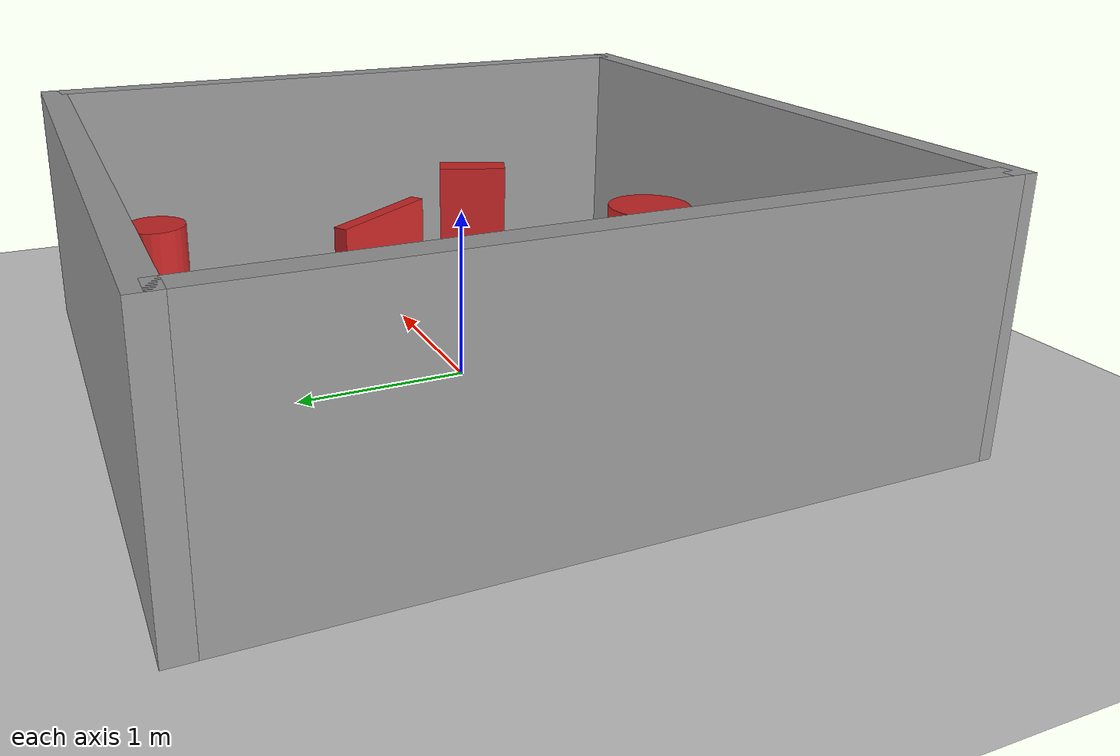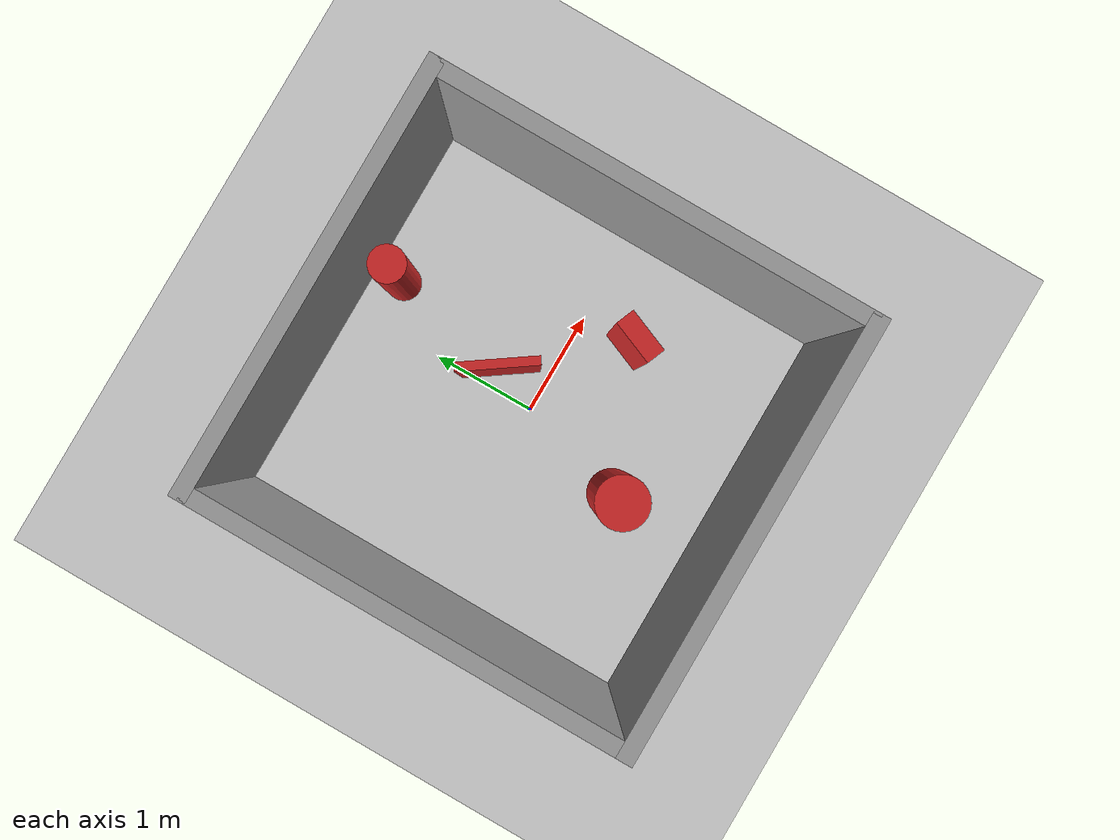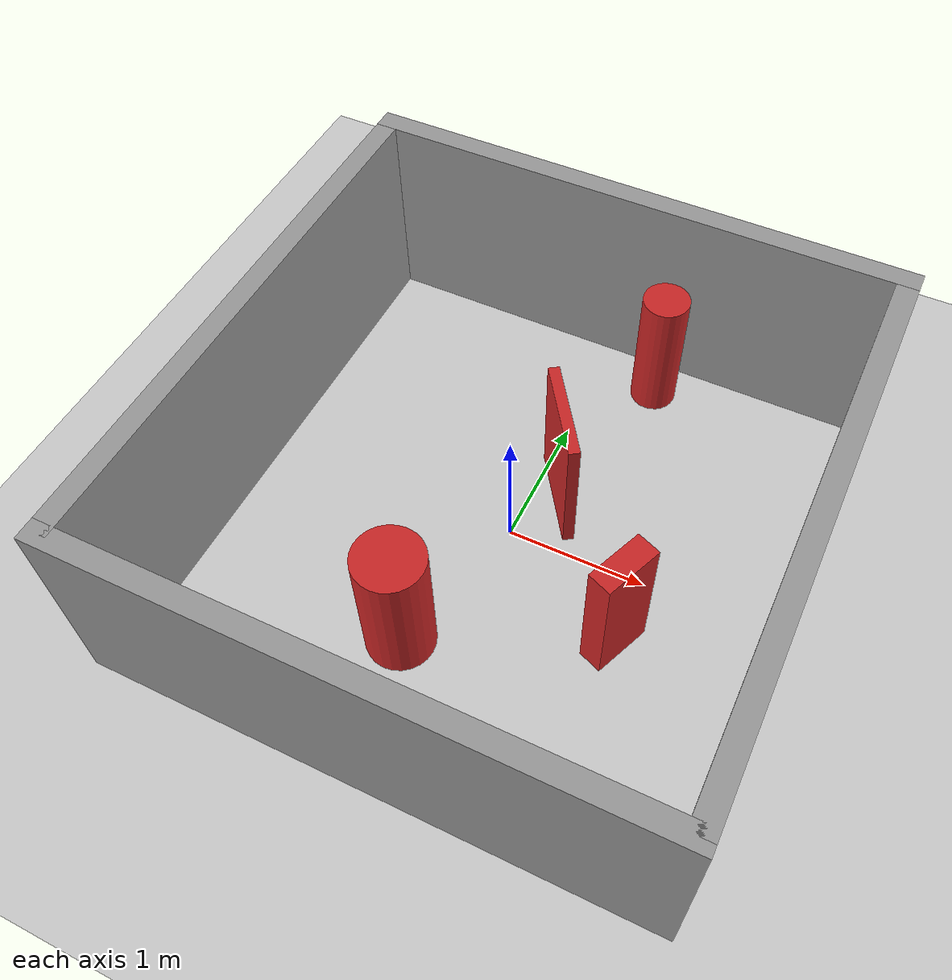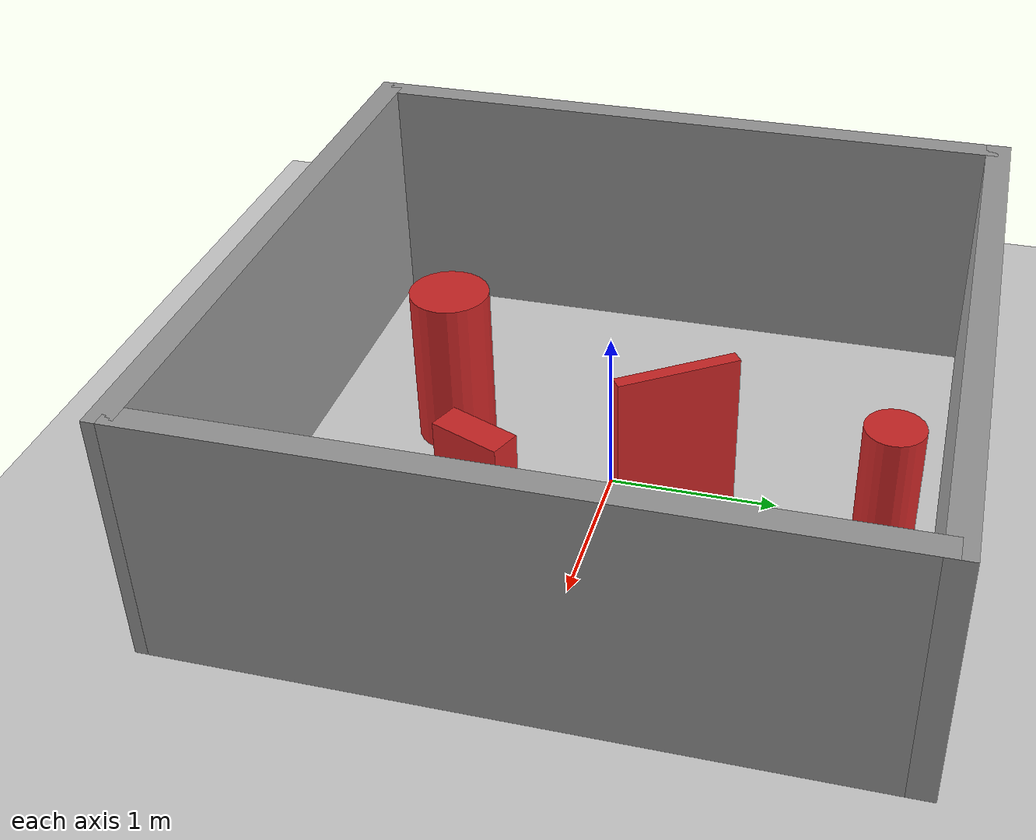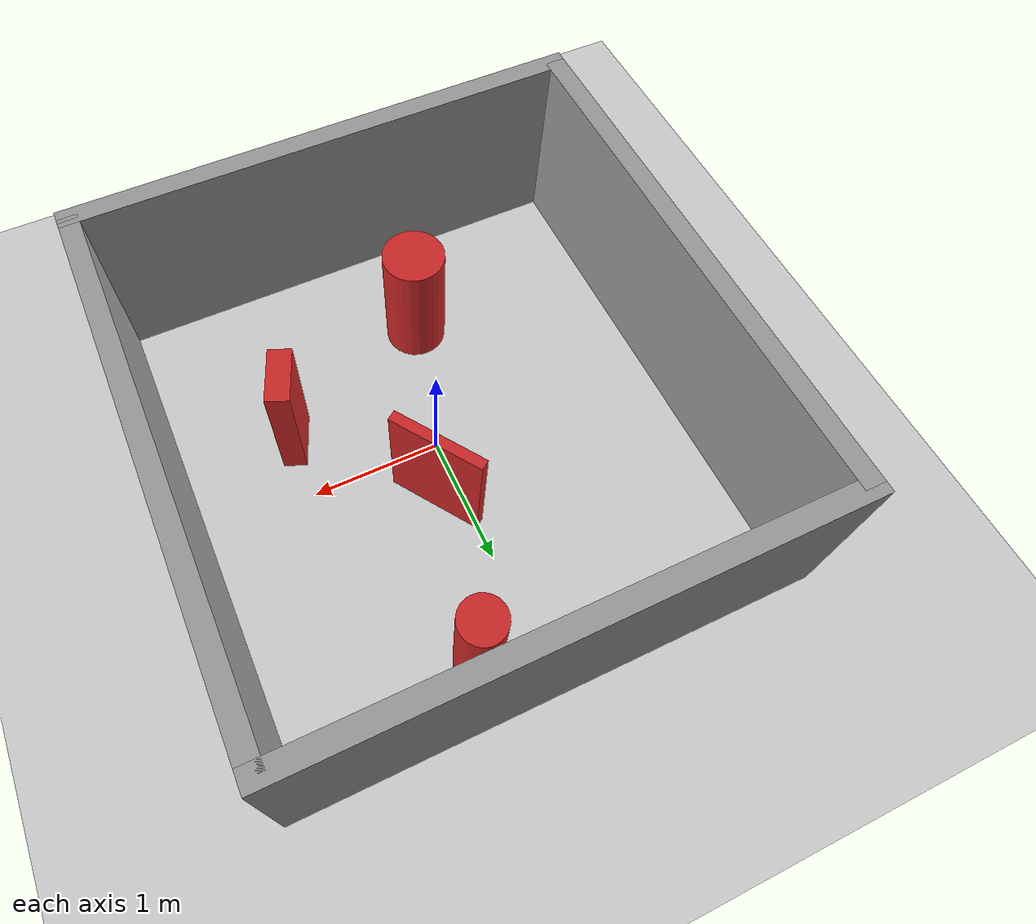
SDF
<sdf version="1.7">
 <world name="empty_square_enclosure">
  <include><uri>model://sun</uri></include>
  <model name="ground_plane">
   <static>1</static>
   <link name="link">
    <collision name="collision">
     <geometry><plane><normal>0 0 1</normal><size>100 100</size></plane></geometry>
     <surface>
      <contact><collide_bitmask>65535</collide_bitmask></contact>
      <friction><ode><mu>100</mu><mu2>50</mu2></ode></friction>
     </surface>
    </collision>
    <visual name="visual">
     <cast_shadows>0</cast_shadows>
     <geometry><plane><normal>0 0 1</normal><size>100 100</size></plane></geometry>
     <material>
      <script><uri>file://media/materials/scripts/gazebo.material</uri><name>Gazebo/Grey</name></script>
     </material>
    </visual>
   </link>
  </model>
  <model name="square_enclosure">
   <link name="Wall_0">
    <collision name="Wall_0_Collision">
     <geometry><box><size>4 0.15 1.5</size></box></geometry>
     <pose>0 0 0.75 0 -0 0</pose>
    </collision>
    <visual name="Wall_0_Visual">
     <cast_shadows>0</cast_shadows>
     <pose>0 0 0.75 0 -0 0</pose>
     <geometry><box><size>4 0.15 1.5</size></box></geometry>
     <material>
      <script><uri>file://media/materials/scripts/gazebo.material</uri><name>Gazebo/Grey</name></script>
      <ambient>1 1 1 1</ambient>
     </material>
     <meta><layer>0</layer></meta>
    </visual>
    <pose>-1.925 0 0 0 -0 -1.5708</pose>
   </link>
   <link name="Wall_1">
    <collision name="Wall_1_Collision">
     <geometry><box><size>4 0.15 1.5</size></box></geometry>
     <pose>0 0 0.75 0 -0 0</pose>
    </collision>
    <visual name="Wall_1_Visual">
     <cast_shadows>0</cast_shadows>
     <pose>0 0 0.75 0 -0 0</pose>
     <geometry><box><size>4 0.15 1.5</size></box></geometry>
     <material>
      <script><uri>file://media/materials/scripts/gazebo.material</uri><name>Gazebo/Grey</name></script>
      <ambient>1 1 1 1</ambient>
     </material>
     <meta><layer>0</layer></meta>
    </visual>
    <pose>0 -2 0 0 -0 0</pose>
   </link>
   <link name="Wall_2">
    <collision name="Wall_2_Collision">
     <geometry><box><size>4 0.15 1.5</size></box></geometry>
     <pose>0 0 0.75 0 -0 0</pose>
    </collision>
    <visual name="Wall_2_Visual">
     <cast_shadows>0</cast_shadows>
     <pose>0 0 0.75 0 -0 0</pose>
     <geometry><box><size>4 0.15 1.5</size></box></geometry>
     <material>
      <script><uri>file://media/materials/scripts/gazebo.material</uri><name>Gazebo/Grey</name></script>
      <ambient>1 1 1 1</ambient>
     </material>
     <meta><layer>0</layer></meta>
    </visual>
    <pose>1.925 0 0 0 -0 1.5708</pose>
   </link>
   <link name="Wall_3">
    <collision name="Wall_3_Collision">
     <geometry><box><size>4 0.15 1.5</size></box></geometry>
     <pose>0 0 0.75 0 -0 0</pose>
    </collision>
    <visual name="Wall_3_Visual">
     <cast_shadows>0</cast_shadows>
     <pose>0 0 0.75 0 -0 0</pose>
     <geometry><box><size>4 0.15 1.5</size></box></geometry>
     <material>
      <script><uri>file://media/materials/scripts/gazebo.material</uri><name>Gazebo/Grey</name></script>
      <ambient>1 1 1 1</ambient>
     </material>
     <meta><layer>0</layer></meta>
    </visual>
    <pose>0 2 0 0 -0 3.14159</pose>
   </link>
   <static>1</static>
  </model>
  <physics type="ode">
   <real_time_update_rate>0</real_time_update_rate>
   <ode>
    <solver>
     <type>quick</type>
     <iters>150</iters>
     <precon_iters>0</precon_iters>
     <sor>1.4</sor>
     <use_dynamic_moi_rescaling>1</use_dynamic_moi_rescaling>
     <thread_position_correction>0</thread_position_correction>
     <island_threads>0</island_threads>
    </solver>
    <constraints>
     <cfm>1e-05</cfm>
     <erp>0.2</erp>
     <contact_max_correcting_vel>2000</contact_max_correcting_vel>
     <contact_surface_layer>0.01</contact_surface_layer>
    </constraints>
   </ode>
  </physics>
  <scene><ambient>0.4 0.4 0.4 1</ambient><background>0.7 0.7 0.7 1</background><shadows>0</shadows></scene>
  <gravity>0 0 -9.8</gravity>
  <model name="unit_box">
   <pose>0.183844 0.422075 0.5 0 -2e-06 0.603852</pose>
   <link name="link">
    <inertial>
     <mass>1</mass>
     <inertia>
      <ixx>0.166667</ixx>
      <ixy>0</ixy>
      <ixz>0</ixz>
      <iyy>0.166667</iyy>
      <iyz>0</iyz>
      <izz>0.166667</izz>
     </inertia>
    </inertial>
    <collision name="collision"><geometry><box><size>0.0807919 0.731821 1</size></box></geometry></collision>
    <visual name="visual">
     <cast_shadows>0</cast_shadows>
     <geometry><box><size>0.0807919 0.731821 1</size></box></geometry>
     <material>
      <script><name>Gazebo/Red</name><uri>file://media/materials/scripts/gazebo.material</uri></script>
     </material>
    </visual>
   </link>
  </model>
  <model name="unit_cylinder">
   <pose>-0.292605 -1.0613 0.499997 -0 -0 -0</pose>
   <link name="link">
    <inertial>
     <mass>1</mass>
     <inertia><ixx>0.145833</ixx><ixy>0</ixy><ixz>0</ixz><iyy>0.145833</iyy><iyz>0</iyz><izz>0.125</izz></inertia>
    </inertial>
    <collision name="collision">
     <geometry><cylinder><radius>0.239243</radius><length>1</length></cylinder></geometry>
    </collision>
    <visual name="visual">
     <cast_shadows>0</cast_shadows>
     <geometry><cylinder><radius>0.239243</radius><length>1</length></cylinder></geometry>
     <material>
      <script><name>Gazebo/Red</name><uri>file://media/materials/scripts/gazebo.material</uri></script>
     </material>
    </visual>
   </link>
  </model>
  <model name="unit_box_0">
   <pose>0.978735 -0.492935 0.5 0 -0 1.18298</pose>
   <link name="link">
    <inertial>
     <mass>1</mass>
     <inertia>
      <ixx>0.166667</ixx>
      <ixy>0</ixy>
      <ixz>0</ixz>
      <iyy>0.166667</iyy>
      <iyz>0</iyz>
      <izz>0.166667</izz>
     </inertia>
    </inertial>
    <collision name="collision"><geometry><box><size>0.423904 0.177704 1</size></box></geometry></collision>
    <visual name="visual">
     <cast_shadows>0</cast_shadows>
     <geometry><box><size>0.423904 0.177704 1</size></box></geometry>
     <material>
      <script><name>Gazebo/Red</name><uri>file://media/materials/scripts/gazebo.material</uri></script>
     </material>
    </visual>
   </link>
  </model>
  <model name="unit_cylinder_0">
   <pose>0.436877 1.6377 0.499999 1e-06 -1e-06 0</pose>
   <link name="link">
    <inertial>
     <mass>1</mass>
     <inertia><ixx>0.145833</ixx><ixy>0</ixy><ixz>0</ixz><iyy>0.145833</iyy><iyz>0</iyz><izz>0.125</izz></inertia>
    </inertial>
    <collision name="collision">
     <geometry><cylinder><radius>0.168684</radius><length>1</length></cylinder></geometry>
    </collision>
    <visual name="visual">
     <cast_shadows>0</cast_shadows>
     <geometry><cylinder><radius>0.168684</radius><length>1</length></cylinder></geometry>
     <material>
      <script><name>Gazebo/Red</name><uri>file://media/materials/scripts/gazebo.material</uri></script>
     </material>
    </visual>
   </link>
  </model>
 </world>
</sdf>
